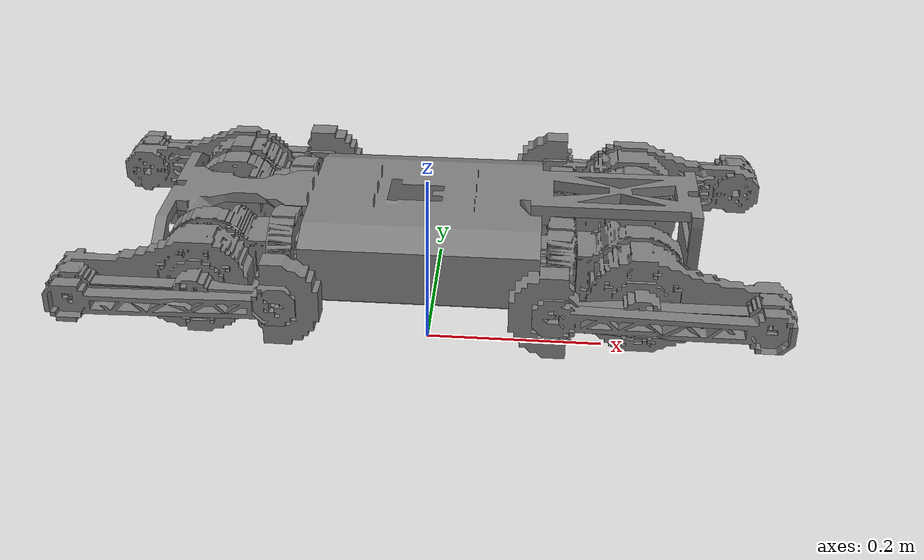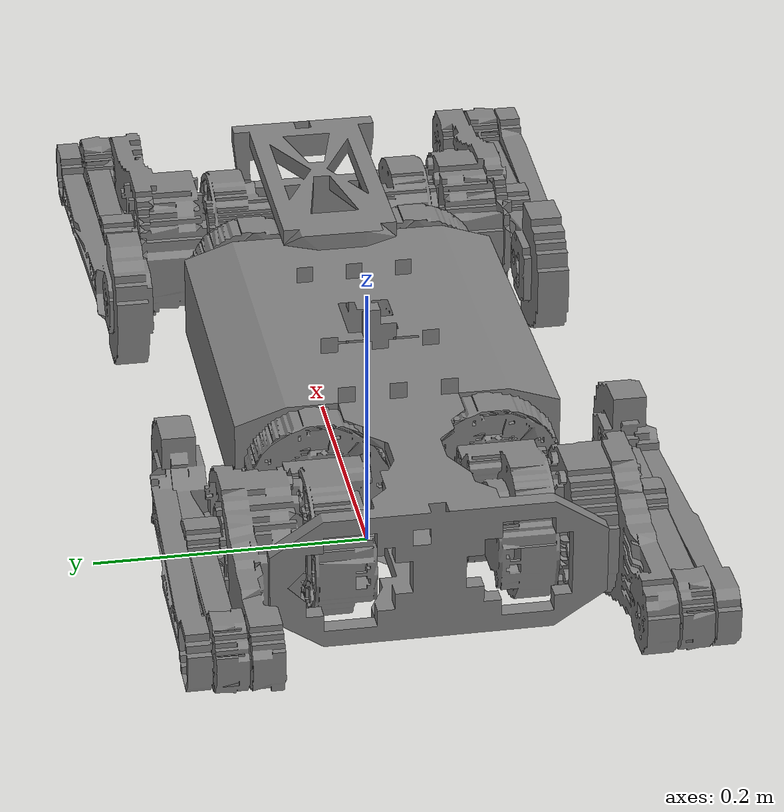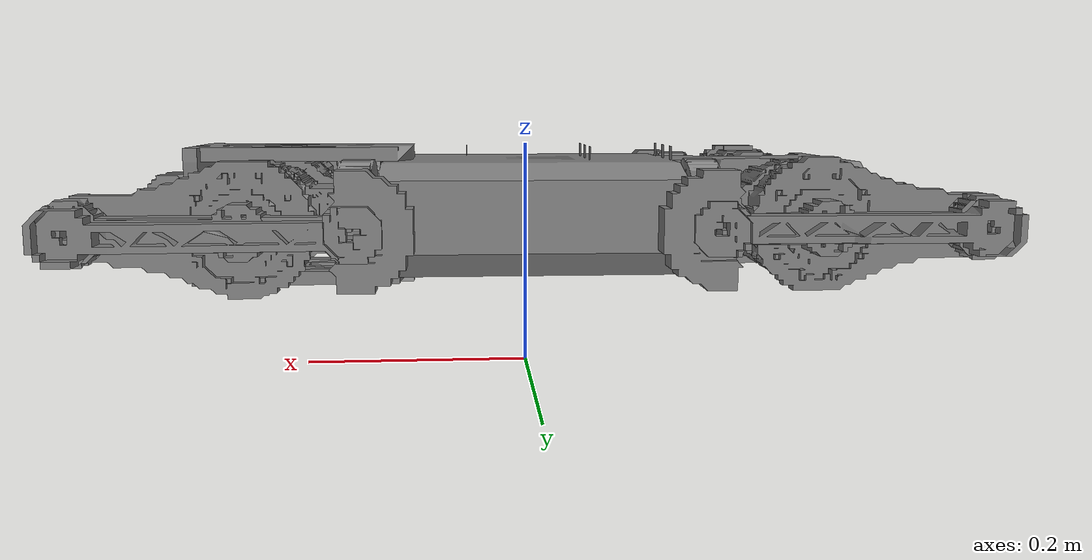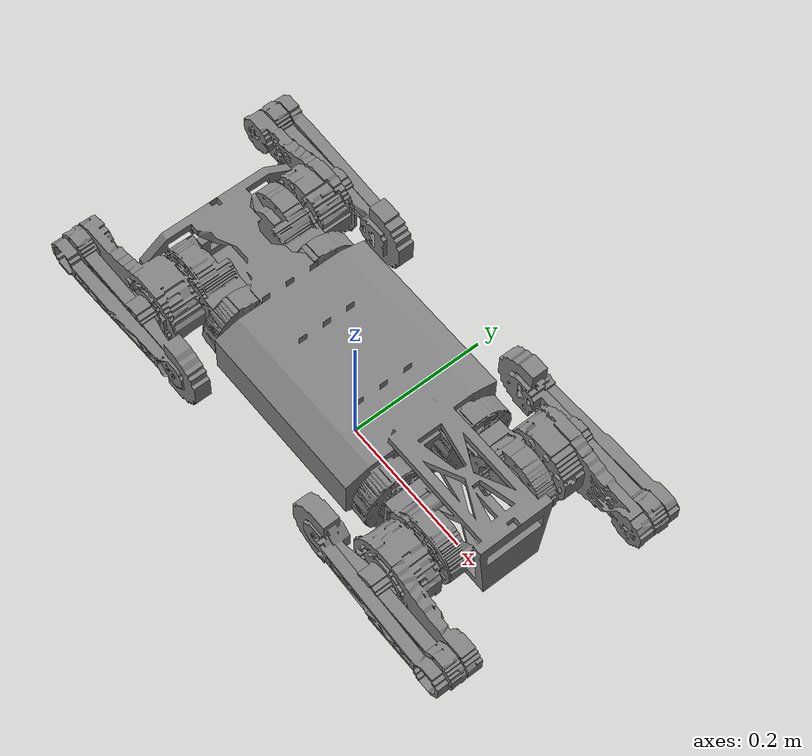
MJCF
<mujoco model="wojtek">
  <compiler angle="radian" meshdir="../meshes/"/>

  <option timestep="0.004" iterations="2" ls_iterations="5"/>

  <size nkey="1"/>

  <default>
    <joint limited="true" armature="0.01" damping="0.3" frictionloss="0.3"/>
    <geom conaffinity="15" condim="4" friction="0.9 0.2 0.2" solref="0.001 2"/>

    <equality solref="0.001 2"/>
    <general ctrllimited="true"/>
    <default class="visual">
      <geom type="mesh" contype="0" conaffinity="0" group="2" density="0" material="grey"/>
    </default>
    <default class="collision">
      <geom type="mesh" group="3"/>
    </default>
  </default>

  <asset>
    <material name="grey" rgba="0.5 0.5 0.5 1"/>
    <mesh name="base_link" file="base_link.stl"/>
    <mesh name="first_link" file="first_link.stl"/>
    <mesh name="second_link" file="second_link.stl"/>
    <mesh name="third_link" file="third_link.stl"/>
    <mesh name="fourth_link" file="fourth_link.stl"/>
    <mesh name="fifth_link" file="fifth_link.stl"/>
    <mesh name="sixth_link" file="sixth_link.stl"/>
  </asset>

  <worldbody>
    <body name="root" pos="0 0 0.08">
      <inertial pos="0 0 0" mass="8.63998" diaginertia="0.0256319 0.0904317 0.101664"/>
      <joint name="root" type="free" armature="0" damping="0" frictionloss="0"/>
      <geom name="base_link_visual" class="visual" pos="0 0 0" quat="0 0 0 1" mesh="base_link"/>
      <geom name="base_link_collision" class="collision" pos="0 0 0" quat="0 0 0 1" contype="0" conaffinity="0" mesh="base_link"/>
      <geom name="rear_left_first_link_visual" class="visual" pos="-0.131 0.06 0.06" quat="0 0 -0.707107 0.707107" mesh="first_link"/>
      <geom name="rear_left_first_link_collision" class="collision" pos="-0.131 0.06 0.06" quat="0 0 -0.707107 0.707107" contype="0" conaffinity="0" mesh="first_link"/>
      <geom name="rear_right_first_link_visual" class="visual" pos="-0.131 -0.06 0.06" quat="0 0 -0.707107 0.707107" mesh="first_link"/>
      <geom name="rear_right_first_link_collision" class="collision" pos="-0.131 -0.06 0.06" quat="0 0 -0.707107 0.707107" contype="0" conaffinity="0" mesh="first_link"/>
      <geom name="front_right_first_link_visual" class="visual" pos="0.131 -0.06 0.06" quat="0.707107 -0.707107 0 0" mesh="first_link"/>
      <geom name="front_right_first_link_collision" class="collision" pos="0.131 -0.06 0.06" quat="0.707107 -0.707107 0 0" contype="0" conaffinity="0" mesh="first_link"/>
      <geom name="front_left_first_link_visual" class="visual" pos="0.131 0.06 0.06" quat="0.707107 -0.707107 0 0" mesh="first_link"/>
      <geom name="front_left_first_link_collision" class="collision" pos="0.131 0.06 0.06" quat="0.707107 -0.707107 0 0" contype="0" conaffinity="0" mesh="first_link"/>
      <geom name="base_box_r0c0" size="0.0278333 0.0261667 0.05" pos="-0.141667 -0.0533333 0" type="box" group="3"/>
      <geom name="base_box_r0c2" size="0.0278333 0.0261667 0.05" pos="-0.0283333 -0.0533333 0" type="box" group="3"/>
      <geom name="base_box_r0c4" size="0.0278333 0.0261667 0.05" pos="0.085 -0.0533333 0" type="box" group="3"/>
      <geom name="base_box_r1c1" size="0.0278333 0.0261667 0.05" pos="-0.085 0 0" type="box" group="3"/>
      <geom name="base_box_r1c3" size="0.0278333 0.0261667 0.05" pos="0.0283333 0 0" type="box" group="3"/>
      <geom name="base_box_r1c5" size="0.0278333 0.0261667 0.05" pos="0.141667 0 0" type="box" group="3"/>
      <geom name="base_box_r2c0" size="0.0278333 0.0261667 0.05" pos="-0.141667 0.0533333 0" type="box" group="3"/>
      <geom name="base_box_r2c2" size="0.0278333 0.0261667 0.05" pos="-0.0283333 0.0533333 0" type="box" group="3"/>
      <geom name="base_box_r2c4" size="0.0278333 0.0261667 0.05" pos="0.085 0.0533333 0" type="box" group="3"/>
      <site name="imu" pos="0 0 0" size="1e-08"/>
      <camera name="ego" pos="0.3 0 0.1" quat="0.541665 0.454532 -0.454532 -0.541665" fovy="100"/>
      <camera name="bench" pos="0.05 0 1.11" quat="-0.5 -0.5 0.5 0.5" fovy="73.74"/>
      <body name="rear_left_second_link" pos="-0.162 0.06 0.06" quat="0 0 0.707107 0.707107">
        <inertial pos="0.055 0 0" quat="0.5 0.5 -0.5 0.5" mass="0.6" diaginertia="0.00075 0.000455 0.000455"/>
        <joint name="rear_left_first_joint" pos="0 0 0" axis="1 0 0" range="-3.1416 3.1416" damping="0.05" frictionloss="0.01"/>
        <geom name="rear_left_second_link_visual" class="visual" mesh="second_link"/>
        <geom name="rear_left_second_link_collision" class="collision" contype="0" conaffinity="0" mesh="second_link"/>
        <geom name="rear_left_second_link_floor" size="0.035" pos="0.055 0 0" contype="2" conaffinity="0" group="3"/>
        <body name="rear_left_third_link" pos="0.064 0 0.023" quat="0 0 0 1">
          <inertial pos="0 0 0.025" quat="0.5 0.5 -0.5 0.5" mass="0.6" diaginertia="0.00075 0.000455 0.000455"/>
          <joint name="rear_left_second_joint" pos="0 0 0" axis="0 0 -1" range="-3.14 3.14" damping="0.05" frictionloss="0.01"/>
          <geom name="rear_left_third_link_visual" class="visual" mesh="third_link"/>
          <geom name="rear_left_third_link_collision" class="collision" contype="0" conaffinity="0" mesh="third_link"/>
          <geom name="rear_left_third_link_floor" size="0.028 0.08" pos="-0.04 0 0.03" quat="0.707107 0 -0.707107 0" type="capsule" contype="2" conaffinity="0" group="3"/>
          <body name="rear_left_fourth_link" pos="0 0 0.0555" quat="6.28319e-06 0 0 -1">
            <inertial pos="0.0625 0 0.015" quat="0 0.707107 0 0.707107" mass="0.04" diaginertia="0.000104167 0.000103104 3.10417e-06"/>
            <joint name="rear_left_third_joint" pos="0 0 0" axis="0 0 1" range="0.425 5.8" damping="0.05" frictionloss="0.01"/>
            <geom name="rear_left_fourth_link_visual" class="visual" mesh="fourth_link"/>
            <geom name="rear_left_fourth_link_collision" class="collision" contype="0" conaffinity="0" mesh="fourth_link"/>
            <body name="rear_left_fifth_link" pos="0.125 0 0.0255" quat="0 0 0 1">
              <inertial pos="0.105 0 -4.59982e-07" quat="0 0.707107 0 0.707107" mass="0.050002" diaginertia="0.000267084 0.000261694 7.94407e-06"/>
              <joint name="rear_left_fourth_joint" pos="0 0 0" axis="0 0 -1" limited="false" damping="0" frictionloss="0"/>
              <geom name="rear_left_fifth_link_visual" class="visual" mesh="fifth_link"/>
              <geom name="rear_left_fifth_link_collision" class="collision" contype="0" conaffinity="0" mesh="fifth_link"/>
              <geom name="rear_left_fifth_link_floor" size="0.012 0.06" pos="0.08 0 0" quat="0.707107 0 -0.707107 0" type="capsule" contype="2" conaffinity="0" group="3"/>
              <site name="rear_left_chain_close_a" pos="0.105 0 -0.0115" group="4"/>
              <body name="rear_left_chain_close_a_link" pos="0.21 0 -0.0115" quat="0 0 0 1"/>
            </body>
          </body>
          <body name="rear_left_sixth_link" pos="-0.125 0 0.058">
            <inertial pos="0.105 0 0" quat="0 0.707107 0 0.707107" mass="0.05" diaginertia="0.000267083 0.000261693 7.94271e-06"/>
            <joint name="rear_left_fifth_joint" pos="0 0 0" axis="0 0 -1" range="-3.14 3.14" damping="0" frictionloss="0"/>
            <geom name="rear_left_sixth_link_visual" class="visual" mesh="sixth_link"/>
            <geom name="rear_left_sixth_link_collision" class="collision" contype="0" conaffinity="0" mesh="sixth_link"/>
            <geom name="rear_left_sixth_link_floor" size="0.012 0.06" pos="0.08 0 0" quat="0.707107 0 -0.707107 0" type="capsule" contype="2" conaffinity="0" group="3"/>
            <body name="rear_left_foot_link" pos="0.21 0 0.0115">
              <inertial pos="0.0525 0 0" quat="0.5 0.5 0.5 0.5" mass="0.01" diaginertia="1e-06 1e-06 1e-06"/>
              <joint name="rear_left_foot_joint" pos="0 0 0" axis="0 0 1" range="-3.14 3.14" damping="0" frictionloss="0"/>
              <geom name="rear_left_foot_sphere" size="0.046" conaffinity="1" group="3"/>
              <site name="rear_left_foot" pos="0 0 0" group="4"/>
              <site name="rear_left_chain_close_b" pos="0.105 0 0" group="4"/>
            </body>
          </body>
        </body>
      </body>
      <body name="rear_right_second_link" pos="-0.162 -0.06 0.06" quat="0 0 -0.707107 0.707107">
        <inertial pos="0.055 0 0" quat="0.5 0.5 -0.5 0.5" mass="0.6" diaginertia="0.00075 0.000455 0.000455"/>
        <joint name="rear_right_first_joint" pos="0 0 0" axis="1 0 0" range="-3.1416 3.1416" damping="0.05" frictionloss="0.01"/>
        <geom name="rear_right_second_link_visual" class="visual" mesh="second_link"/>
        <geom name="rear_right_second_link_collision" class="collision" contype="0" conaffinity="0" mesh="second_link"/>
        <geom name="rear_right_second_link_floor" size="0.035" pos="0.055 0 0" contype="2" conaffinity="0" group="3"/>
        <body name="rear_right_third_link" pos="0.064 0 0.023" quat="0 0 0 1">
          <inertial pos="0 0 0.025" quat="0.5 0.5 -0.5 0.5" mass="0.6" diaginertia="0.00075 0.000455 0.000455"/>
          <joint name="rear_right_second_joint" pos="0 0 0" axis="0 0 1" range="-3.14 3.14" damping="0.05" frictionloss="0.01"/>
          <geom name="rear_right_third_link_visual" class="visual" mesh="third_link"/>
          <geom name="rear_right_third_link_collision" class="collision" contype="0" conaffinity="0" mesh="third_link"/>
          <geom name="rear_right_third_link_floor" size="0.028 0.08" pos="-0.04 0 0.03" quat="0.707107 0 -0.707107 0" type="capsule" contype="2" conaffinity="0" group="3"/>
          <body name="rear_right_fourth_link" pos="0 0 0.0555" quat="6.28319e-06 0 0 1">
            <inertial pos="0.0625 0 0.015" quat="0 0.707107 0 0.707107" mass="0.04" diaginertia="0.000104167 0.000103104 3.10417e-06"/>
            <joint name="rear_right_third_joint" pos="0 0 0" axis="0 0 -1" range="0.425 5.8" damping="0.05" frictionloss="0.01"/>
            <geom name="rear_right_fourth_link_visual" class="visual" mesh="fourth_link"/>
            <geom name="rear_right_fourth_link_collision" class="collision" contype="0" conaffinity="0" mesh="fourth_link"/>
            <body name="rear_right_fifth_link" pos="0.125 0 0.0255" quat="0 0 0 1">
              <inertial pos="0.105 0 -4.59982e-07" quat="0 0.707107 0 0.707107" mass="0.050002" diaginertia="0.000267084 0.000261694 7.94407e-06"/>
              <joint name="rear_right_fourth_joint" pos="0 0 0" axis="0 0 -1" limited="false" damping="0" frictionloss="0"/>
              <geom name="rear_right_fifth_link_visual" class="visual" mesh="fifth_link"/>
              <geom name="rear_right_fifth_link_collision" class="collision" contype="0" conaffinity="0" mesh="fifth_link"/>
              <geom name="rear_right_fifth_link_floor" size="0.012 0.06" pos="0.08 0 0" quat="0.707107 0 -0.707107 0" type="capsule" contype="2" conaffinity="0" group="3"/>
              <site name="rear_right_chain_close_a" pos="0.105 0 -0.0115" group="4"/>
              <body name="rear_right_chain_close_a_link" pos="0.21 0 -0.0115" quat="0 0 0 1"/>
            </body>
          </body>
          <body name="rear_right_sixth_link" pos="-0.125 0 0.058">
            <inertial pos="0.105 0 0" quat="0 0.707107 0 0.707107" mass="0.05" diaginertia="0.000267083 0.000261693 7.94271e-06"/>
            <joint name="rear_right_fifth_joint" pos="0 0 0" axis="0 0 -1" range="-3.14 3.14" damping="0" frictionloss="0"/>
            <geom name="rear_right_sixth_link_visual" class="visual" mesh="sixth_link"/>
            <geom name="rear_right_sixth_link_collision" class="collision" contype="0" conaffinity="0" mesh="sixth_link"/>
            <geom name="rear_right_sixth_link_floor" size="0.012 0.06" pos="0.08 0 0" quat="0.707107 0 -0.707107 0" type="capsule" contype="2" conaffinity="0" group="3"/>
            <body name="rear_right_foot_link" pos="0.21 0 0.0115">
              <inertial pos="0.0525 0 0" quat="0.5 0.5 0.5 0.5" mass="0.01" diaginertia="1e-06 1e-06 1e-06"/>
              <joint name="rear_right_foot_joint" pos="0 0 0" axis="0 0 1" range="-3.14 3.14" damping="0" frictionloss="0"/>
              <geom name="rear_right_foot_sphere" size="0.046" conaffinity="1" group="3"/>
              <site name="rear_right_foot" pos="0 0 0" group="4"/>
              <site name="rear_right_chain_close_b" pos="0.105 0 0" group="4"/>
            </body>
          </body>
        </body>
      </body>
      <body name="front_right_second_link" pos="0.162 -0.06 0.06" quat="0.707107 0.707107 0 0">
        <inertial pos="0.055 0 0" quat="0.5 0.5 -0.5 0.5" mass="0.6" diaginertia="0.00075 0.000455 0.000455"/>
        <joint name="front_right_first_joint" pos="0 0 0" axis="1 0 0" range="-3.1416 3.1416" damping="0.05" frictionloss="0.01"/>
        <geom name="front_right_second_link_visual" class="visual" mesh="second_link"/>
        <geom name="front_right_second_link_collision" class="collision" contype="0" conaffinity="0" mesh="second_link"/>
        <geom name="front_right_second_link_floor" size="0.035" pos="0.055 0 0" contype="2" conaffinity="0" group="3"/>
        <body name="front_right_third_link" pos="0.064 0 0.023" quat="0 0 0 1">
          <inertial pos="0 0 0.025" quat="0.5 0.5 -0.5 0.5" mass="0.6" diaginertia="0.00075 0.000455 0.000455"/>
          <joint name="front_right_second_joint" pos="0 0 0" axis="0 0 -1" range="-3.14 3.14" damping="0.05" frictionloss="0.01"/>
          <geom name="front_right_third_link_visual" class="visual" mesh="third_link"/>
          <geom name="front_right_third_link_collision" class="collision" contype="0" conaffinity="0" mesh="third_link"/>
          <geom name="front_right_third_link_floor" size="0.028 0.08" pos="-0.04 0 0.03" quat="0.707107 0 -0.707107 0" type="capsule" contype="2" conaffinity="0" group="3"/>
          <body name="front_right_fourth_link" pos="0 0 0.0555" quat="6.28319e-06 0 0 -1">
            <inertial pos="0.0625 0 0.015" quat="0 0.707107 0 0.707107" mass="0.04" diaginertia="0.000104167 0.000103104 3.10417e-06"/>
            <joint name="front_right_third_joint" pos="0 0 0" axis="0 0 1" range="0.425 5.8" damping="0.05" frictionloss="0.01"/>
            <geom name="front_right_fourth_link_visual" class="visual" mesh="fourth_link"/>
            <geom name="front_right_fourth_link_collision" class="collision" contype="0" conaffinity="0" mesh="fourth_link"/>
            <body name="front_right_fifth_link" pos="0.125 0 0.0255" quat="0 0 0 1">
              <inertial pos="0.105 0 -4.59982e-07" quat="0 0.707107 0 0.707107" mass="0.050002" diaginertia="0.000267084 0.000261694 7.94407e-06"/>
              <joint name="front_right_fourth_joint" pos="0 0 0" axis="0 0 -1" limited="false" damping="0" frictionloss="0"/>
              <geom name="front_right_fifth_link_visual" class="visual" mesh="fifth_link"/>
              <geom name="front_right_fifth_link_collision" class="collision" contype="0" conaffinity="0" mesh="fifth_link"/>
              <geom name="front_right_fifth_link_floor" size="0.012 0.06" pos="0.08 0 0" quat="0.707107 0 -0.707107 0" type="capsule" contype="2" conaffinity="0" group="3"/>
              <site name="front_right_chain_close_a" pos="0.105 0 -0.0115" group="4"/>
              <body name="front_right_chain_close_a_link" pos="0.21 0 -0.0115" quat="0 0 0 1"/>
            </body>
          </body>
          <body name="front_right_sixth_link" pos="-0.125 0 0.058">
            <inertial pos="0.105 0 0" quat="0 0.707107 0 0.707107" mass="0.05" diaginertia="0.000267083 0.000261693 7.94271e-06"/>
            <joint name="front_right_fifth_joint" pos="0 0 0" axis="0 0 -1" range="-3.14 3.14" damping="0" frictionloss="0"/>
            <geom name="front_right_sixth_link_visual" class="visual" mesh="sixth_link"/>
            <geom name="front_right_sixth_link_collision" class="collision" contype="0" conaffinity="0" mesh="sixth_link"/>
            <geom name="front_right_sixth_link_floor" size="0.012 0.06" pos="0.08 0 0" quat="0.707107 0 -0.707107 0" type="capsule" contype="2" conaffinity="0" group="3"/>
            <body name="front_right_foot_link" pos="0.21 0 0.0115">
              <inertial pos="0.0525 0 0" quat="0.5 0.5 0.5 0.5" mass="0.01" diaginertia="1e-06 1e-06 1e-06"/>
              <joint name="front_right_foot_joint" pos="0 0 0" axis="0 0 1" range="-3.14 3.14" damping="0" frictionloss="0"/>
              <geom name="front_right_foot_sphere" size="0.046" conaffinity="1" group="3"/>
              <site name="front_right_foot" pos="0 0 0" group="4"/>
              <site name="front_right_chain_close_b" pos="0.105 0 0" group="4"/>
            </body>
          </body>
        </body>
      </body>
      <body name="front_left_second_link" pos="0.162 0.06 0.06" quat="0.707107 -0.707107 0 0">
        <inertial pos="0.055 0 0" quat="0.5 0.5 -0.5 0.5" mass="0.6" diaginertia="0.00075 0.000455 0.000455"/>
        <joint name="front_left_first_joint" pos="0 0 0" axis="1 0 0" range="-3.1416 3.1416" damping="0.05" frictionloss="0.01"/>
        <geom name="front_left_second_link_visual" class="visual" mesh="second_link"/>
        <geom name="front_left_second_link_collision" class="collision" contype="0" conaffinity="0" mesh="second_link"/>
        <geom name="front_left_second_link_floor" size="0.035" pos="0.055 0 0" contype="2" conaffinity="0" group="3"/>
        <body name="front_left_third_link" pos="0.064 0 0.023" quat="0 0 0 1">
          <inertial pos="0 0 0.025" quat="0.5 0.5 -0.5 0.5" mass="0.6" diaginertia="0.00075 0.000455 0.000455"/>
          <joint name="front_left_second_joint" pos="0 0 0" axis="0 0 1" range="-3.14 3.14" damping="0.05" frictionloss="0.01"/>
          <geom name="front_left_third_link_visual" class="visual" mesh="third_link"/>
          <geom name="front_left_third_link_collision" class="collision" contype="0" conaffinity="0" mesh="third_link"/>
          <geom name="front_left_third_link_floor" size="0.028 0.08" pos="-0.04 0 0.03" quat="0.707107 0 -0.707107 0" type="capsule" contype="2" conaffinity="0" group="3"/>
          <body name="front_left_fourth_link" pos="0 0 0.0555" quat="6.28319e-06 0 0 1">
            <inertial pos="0.0625 0 0.015" quat="0 0.707107 0 0.707107" mass="0.04" diaginertia="0.000104167 0.000103104 3.10417e-06"/>
            <joint name="front_left_third_joint" pos="0 0 0" axis="0 0 -1" range="0.425 5.8" damping="0.05" frictionloss="0.01"/>
            <geom name="front_left_fourth_link_visual" class="visual" mesh="fourth_link"/>
            <geom name="front_left_fourth_link_collision" class="collision" contype="0" conaffinity="0" mesh="fourth_link"/>
            <body name="front_left_fifth_link" pos="0.125 0 0.0255" quat="0 0 0 1">
              <inertial pos="0.105 0 -4.59982e-07" quat="0 0.707107 0 0.707107" mass="0.050002" diaginertia="0.000267084 0.000261694 7.94407e-06"/>
              <joint name="front_left_fourth_joint" pos="0 0 0" axis="0 0 -1" limited="false" damping="0" frictionloss="0"/>
              <geom name="front_left_fifth_link_visual" class="visual" mesh="fifth_link"/>
              <geom name="front_left_fifth_link_collision" class="collision" contype="0" conaffinity="0" mesh="fifth_link"/>
              <geom name="front_left_fifth_link_floor" size="0.012 0.06" pos="0.08 0 0" quat="0.707107 0 -0.707107 0" type="capsule" contype="2" conaffinity="0" group="3"/>
              <site name="front_left_chain_close_a" pos="0.105 0 -0.0115" group="4"/>
              <body name="front_left_chain_close_a_link" pos="0.21 0 -0.0115" quat="0 0 0 1"/>
            </body>
          </body>
          <body name="front_left_sixth_link" pos="-0.125 0 0.058">
            <inertial pos="0.105 0 0" quat="0 0.707107 0 0.707107" mass="0.05" diaginertia="0.000267083 0.000261693 7.94271e-06"/>
            <joint name="front_left_fifth_joint" pos="0 0 0" axis="0 0 -1" range="-3.14 3.14" damping="0" frictionloss="0"/>
            <geom name="front_left_sixth_link_visual" class="visual" mesh="sixth_link"/>
            <geom name="front_left_sixth_link_collision" class="collision" contype="0" conaffinity="0" mesh="sixth_link"/>
            <geom name="front_left_sixth_link_floor" size="0.012 0.06" pos="0.08 0 0" quat="0.707107 0 -0.707107 0" type="capsule" contype="2" conaffinity="0" group="3"/>
            <body name="front_left_foot_link" pos="0.21 0 0.0115">
              <inertial pos="0.0525 0 0" quat="0.5 0.5 0.5 0.5" mass="0.01" diaginertia="1e-06 1e-06 1e-06"/>
              <joint name="front_left_foot_joint" pos="0 0 0" axis="0 0 1" range="-3.14 3.14" damping="0" frictionloss="0"/>
              <geom name="front_left_foot_sphere" size="0.046" conaffinity="1" group="3"/>
              <site name="front_left_foot" pos="0 0 0" group="4"/>
              <site name="front_left_chain_close_b" pos="0.105 0 0" group="4"/>
            </body>
          </body>
        </body>
      </body>
    </body>
  </worldbody>

  <contact>
    <exclude name="exclude_rear_left_second_link_root" body1="root" body2="rear_left_second_link"/>
    <exclude name="exclude_rear_left_third_link_root" body1="root" body2="rear_left_third_link"/>
    <exclude name="exclude_rear_left_fourth_link_root" body1="root" body2="rear_left_fourth_link"/>
    <exclude name="exclude_rear_left_fifth_link_root" body1="root" body2="rear_left_fifth_link"/>
    <exclude name="exclude_rear_left_sixth_link_root" body1="root" body2="rear_left_sixth_link"/>
    <exclude name="exclude_rear_right_second_link_root" body1="root" body2="rear_right_second_link"/>
    <exclude name="exclude_rear_right_third_link_root" body1="root" body2="rear_right_third_link"/>
    <exclude name="exclude_rear_right_fourth_link_root" body1="root" body2="rear_right_fourth_link"/>
    <exclude name="exclude_rear_right_fifth_link_root" body1="root" body2="rear_right_fifth_link"/>
    <exclude name="exclude_rear_right_sixth_link_root" body1="root" body2="rear_right_sixth_link"/>
    <exclude name="exclude_front_right_second_link_root" body1="root" body2="front_right_second_link"/>
    <exclude name="exclude_front_right_third_link_root" body1="root" body2="front_right_third_link"/>
    <exclude name="exclude_front_right_fourth_link_root" body1="root" body2="front_right_fourth_link"/>
    <exclude name="exclude_front_right_fifth_link_root" body1="root" body2="front_right_fifth_link"/>
    <exclude name="exclude_front_right_sixth_link_root" body1="root" body2="front_right_sixth_link"/>
    <exclude name="exclude_front_left_second_link_root" body1="root" body2="front_left_second_link"/>
    <exclude name="exclude_front_left_third_link_root" body1="root" body2="front_left_third_link"/>
    <exclude name="exclude_front_left_fourth_link_root" body1="root" body2="front_left_fourth_link"/>
    <exclude name="exclude_front_left_fifth_link_root" body1="root" body2="front_left_fifth_link"/>
    <exclude name="exclude_front_left_sixth_link_root" body1="root" body2="front_left_sixth_link"/>
    <exclude name="exclude_rear_left_second_link_rear_left_third_link" body1="rear_left_second_link" body2="rear_left_third_link"/>
    <exclude name="exclude_rear_left_third_link_rear_left_second_link" body1="rear_left_second_link" body2="rear_left_third_link"/>
    <exclude name="exclude_rear_left_second_link_rear_left_fourth_link" body1="rear_left_second_link" body2="rear_left_fourth_link"/>
    <exclude name="exclude_rear_left_fourth_link_rear_left_second_link" body1="rear_left_second_link" body2="rear_left_fourth_link"/>
    <exclude name="exclude_rear_left_second_link_rear_left_fifth_link" body1="rear_left_second_link" body2="rear_left_fifth_link"/>
    <exclude name="exclude_rear_left_fifth_link_rear_left_second_link" body1="rear_left_second_link" body2="rear_left_fifth_link"/>
    <exclude name="exclude_rear_left_second_link_rear_left_sixth_link" body1="rear_left_second_link" body2="rear_left_sixth_link"/>
    <exclude name="exclude_rear_left_sixth_link_rear_left_second_link" body1="rear_left_second_link" body2="rear_left_sixth_link"/>
    <exclude name="exclude_rear_left_third_link_rear_left_fourth_link" body1="rear_left_third_link" body2="rear_left_fourth_link"/>
    <exclude name="exclude_rear_left_fourth_link_rear_left_third_link" body1="rear_left_third_link" body2="rear_left_fourth_link"/>
    <exclude name="exclude_rear_left_third_link_rear_left_fifth_link" body1="rear_left_third_link" body2="rear_left_fifth_link"/>
    <exclude name="exclude_rear_left_fifth_link_rear_left_third_link" body1="rear_left_third_link" body2="rear_left_fifth_link"/>
    <exclude name="exclude_rear_left_third_link_rear_left_sixth_link" body1="rear_left_third_link" body2="rear_left_sixth_link"/>
    <exclude name="exclude_rear_left_sixth_link_rear_left_third_link" body1="rear_left_third_link" body2="rear_left_sixth_link"/>
    <exclude name="exclude_rear_left_fourth_link_rear_left_fifth_link" body1="rear_left_fourth_link" body2="rear_left_fifth_link"/>
    <exclude name="exclude_rear_left_fifth_link_rear_left_fourth_link" body1="rear_left_fourth_link" body2="rear_left_fifth_link"/>
    <exclude name="exclude_rear_left_fourth_link_rear_left_sixth_link" body1="rear_left_fourth_link" body2="rear_left_sixth_link"/>
    <exclude name="exclude_rear_left_sixth_link_rear_left_fourth_link" body1="rear_left_fourth_link" body2="rear_left_sixth_link"/>
    <exclude name="exclude_rear_left_fifth_link_rear_left_sixth_link" body1="rear_left_fifth_link" body2="rear_left_sixth_link"/>
    <exclude name="exclude_rear_left_sixth_link_rear_left_fifth_link" body1="rear_left_fifth_link" body2="rear_left_sixth_link"/>
    <exclude name="exclude_rear_right_second_link_rear_right_third_link" body1="rear_right_second_link" body2="rear_right_third_link"/>
    <exclude name="exclude_rear_right_third_link_rear_right_second_link" body1="rear_right_second_link" body2="rear_right_third_link"/>
    <exclude name="exclude_rear_right_second_link_rear_right_fourth_link" body1="rear_right_second_link" body2="rear_right_fourth_link"/>
    <exclude name="exclude_rear_right_fourth_link_rear_right_second_link" body1="rear_right_second_link" body2="rear_right_fourth_link"/>
    <exclude name="exclude_rear_right_second_link_rear_right_fifth_link" body1="rear_right_second_link" body2="rear_right_fifth_link"/>
    <exclude name="exclude_rear_right_fifth_link_rear_right_second_link" body1="rear_right_second_link" body2="rear_right_fifth_link"/>
    <exclude name="exclude_rear_right_second_link_rear_right_sixth_link" body1="rear_right_second_link" body2="rear_right_sixth_link"/>
    <exclude name="exclude_rear_right_sixth_link_rear_right_second_link" body1="rear_right_second_link" body2="rear_right_sixth_link"/>
    <exclude name="exclude_rear_right_third_link_rear_right_fourth_link" body1="rear_right_third_link" body2="rear_right_fourth_link"/>
    <exclude name="exclude_rear_right_fourth_link_rear_right_third_link" body1="rear_right_third_link" body2="rear_right_fourth_link"/>
    <exclude name="exclude_rear_right_third_link_rear_right_fifth_link" body1="rear_right_third_link" body2="rear_right_fifth_link"/>
    <exclude name="exclude_rear_right_fifth_link_rear_right_third_link" body1="rear_right_third_link" body2="rear_right_fifth_link"/>
    <exclude name="exclude_rear_right_third_link_rear_right_sixth_link" body1="rear_right_third_link" body2="rear_right_sixth_link"/>
    <exclude name="exclude_rear_right_sixth_link_rear_right_third_link" body1="rear_right_third_link" body2="rear_right_sixth_link"/>
    <exclude name="exclude_rear_right_fourth_link_rear_right_fifth_link" body1="rear_right_fourth_link" body2="rear_right_fifth_link"/>
    <exclude name="exclude_rear_right_fifth_link_rear_right_fourth_link" body1="rear_right_fourth_link" body2="rear_right_fifth_link"/>
    <exclude name="exclude_rear_right_fourth_link_rear_right_sixth_link" body1="rear_right_fourth_link" body2="rear_right_sixth_link"/>
    <exclude name="exclude_rear_right_sixth_link_rear_right_fourth_link" body1="rear_right_fourth_link" body2="rear_right_sixth_link"/>
    <exclude name="exclude_rear_right_fifth_link_rear_right_sixth_link" body1="rear_right_fifth_link" body2="rear_right_sixth_link"/>
    <exclude name="exclude_rear_right_sixth_link_rear_right_fifth_link" body1="rear_right_fifth_link" body2="rear_right_sixth_link"/>
    <exclude name="exclude_front_right_second_link_front_right_third_link" body1="front_right_second_link" body2="front_right_third_link"/>
    <exclude name="exclude_front_right_third_link_front_right_second_link" body1="front_right_second_link" body2="front_right_third_link"/>
    <exclude name="exclude_front_right_second_link_front_right_fourth_link" body1="front_right_second_link" body2="front_right_fourth_link"/>
    <exclude name="exclude_front_right_fourth_link_front_right_second_link" body1="front_right_second_link" body2="front_right_fourth_link"/>
    <exclude name="exclude_front_right_second_link_front_right_fifth_link" body1="front_right_second_link" body2="front_right_fifth_link"/>
    <exclude name="exclude_front_right_fifth_link_front_right_second_link" body1="front_right_second_link" body2="front_right_fifth_link"/>
    <exclude name="exclude_front_right_second_link_front_right_sixth_link" body1="front_right_second_link" body2="front_right_sixth_link"/>
    <exclude name="exclude_front_right_sixth_link_front_right_second_link" body1="front_right_second_link" body2="front_right_sixth_link"/>
    <exclude name="exclude_front_right_third_link_front_right_fourth_link" body1="front_right_third_link" body2="front_right_fourth_link"/>
    <exclude name="exclude_front_right_fourth_link_front_right_third_link" body1="front_right_third_link" body2="front_right_fourth_link"/>
    <exclude name="exclude_front_right_third_link_front_right_fifth_link" body1="front_right_third_link" body2="front_right_fifth_link"/>
    <exclude name="exclude_front_right_fifth_link_front_right_third_link" body1="front_right_third_link" body2="front_right_fifth_link"/>
    <exclude name="exclude_front_right_third_link_front_right_sixth_link" body1="front_right_third_link" body2="front_right_sixth_link"/>
    <exclude name="exclude_front_right_sixth_link_front_right_third_link" body1="front_right_third_link" body2="front_right_sixth_link"/>
    <exclude name="exclude_front_right_fourth_link_front_right_fifth_link" body1="front_right_fourth_link" body2="front_right_fifth_link"/>
    <exclude name="exclude_front_right_fifth_link_front_right_fourth_link" body1="front_right_fourth_link" body2="front_right_fifth_link"/>
    <exclude name="exclude_front_right_fourth_link_front_right_sixth_link" body1="front_right_fourth_link" body2="front_right_sixth_link"/>
    <exclude name="exclude_front_right_sixth_link_front_right_fourth_link" body1="front_right_fourth_link" body2="front_right_sixth_link"/>
    <exclude name="exclude_front_right_fifth_link_front_right_sixth_link" body1="front_right_fifth_link" body2="front_right_sixth_link"/>
    <exclude name="exclude_front_right_sixth_link_front_right_fifth_link" body1="front_right_fifth_link" body2="front_right_sixth_link"/>
    <exclude name="exclude_front_left_second_link_front_left_third_link" body1="front_left_second_link" body2="front_left_third_link"/>
    <exclude name="exclude_front_left_third_link_front_left_second_link" body1="front_left_second_link" body2="front_left_third_link"/>
    <exclude name="exclude_front_left_second_link_front_left_fourth_link" body1="front_left_second_link" body2="front_left_fourth_link"/>
    <exclude name="exclude_front_left_fourth_link_front_left_second_link" body1="front_left_second_link" body2="front_left_fourth_link"/>
    <exclude name="exclude_front_left_second_link_front_left_fifth_link" body1="front_left_second_link" body2="front_left_fifth_link"/>
    <exclude name="exclude_front_left_fifth_link_front_left_second_link" body1="front_left_second_link" body2="front_left_fifth_link"/>
    <exclude name="exclude_front_left_second_link_front_left_sixth_link" body1="front_left_second_link" body2="front_left_sixth_link"/>
    <exclude name="exclude_front_left_sixth_link_front_left_second_link" body1="front_left_second_link" body2="front_left_sixth_link"/>
    <exclude name="exclude_front_left_third_link_front_left_fourth_link" body1="front_left_third_link" body2="front_left_fourth_link"/>
    <exclude name="exclude_front_left_fourth_link_front_left_third_link" body1="front_left_third_link" body2="front_left_fourth_link"/>
    <exclude name="exclude_front_left_third_link_front_left_fifth_link" body1="front_left_third_link" body2="front_left_fifth_link"/>
    <exclude name="exclude_front_left_fifth_link_front_left_third_link" body1="front_left_third_link" body2="front_left_fifth_link"/>
    <exclude name="exclude_front_left_third_link_front_left_sixth_link" body1="front_left_third_link" body2="front_left_sixth_link"/>
    <exclude name="exclude_front_left_sixth_link_front_left_third_link" body1="front_left_third_link" body2="front_left_sixth_link"/>
    <exclude name="exclude_front_left_fourth_link_front_left_fifth_link" body1="front_left_fourth_link" body2="front_left_fifth_link"/>
    <exclude name="exclude_front_left_fifth_link_front_left_fourth_link" body1="front_left_fourth_link" body2="front_left_fifth_link"/>
    <exclude name="exclude_front_left_fourth_link_front_left_sixth_link" body1="front_left_fourth_link" body2="front_left_sixth_link"/>
    <exclude name="exclude_front_left_sixth_link_front_left_fourth_link" body1="front_left_fourth_link" body2="front_left_sixth_link"/>
    <exclude name="exclude_front_left_fifth_link_front_left_sixth_link" body1="front_left_fifth_link" body2="front_left_sixth_link"/>
    <exclude name="exclude_front_left_sixth_link_front_left_fifth_link" body1="front_left_fifth_link" body2="front_left_sixth_link"/>
  </contact>

  <equality>
    <connect name="equality_sconstraint_front_left" body1="front_left_foot_link" body2="front_left_chain_close_a_link" anchor="0 0 0"/>
    <connect name="equality_sconstraint_front_right" body1="front_right_foot_link" body2="front_right_chain_close_a_link" anchor="0 0 0"/>
    <connect name="equality_sconstraint_rear_left" body1="rear_left_foot_link" body2="rear_left_chain_close_a_link" anchor="0 0 0"/>
    <connect name="equality_sconstraint_rear_right" body1="rear_right_foot_link" body2="rear_right_chain_close_a_link" anchor="0 0 0"/>
  </equality>

  <actuator>
    <general name="rear_left_first_joint" joint="rear_left_first_joint" ctrlrange="-3.1416 3.1416" forcerange="-9 9" biastype="affine" gainprm="20" biasprm="0 -20 -1"/>
    <general name="rear_left_second_joint" joint="rear_left_second_joint" ctrlrange="-3.14 3.14" forcerange="-9 9" biastype="affine" gainprm="20" biasprm="0 -20 -1"/>
    <general name="rear_left_third_joint" joint="rear_left_third_joint" ctrlrange="0.425 5.8" forcerange="-9 9" biastype="affine" gainprm="20" biasprm="0 -20 -1"/>
    <general name="rear_right_first_joint" joint="rear_right_first_joint" ctrlrange="-3.1416 3.1416" forcerange="-9 9" biastype="affine" gainprm="20" biasprm="0 -20 -1"/>
    <general name="rear_right_second_joint" joint="rear_right_second_joint" ctrlrange="-3.14 3.14" forcerange="-9 9" biastype="affine" gainprm="20" biasprm="0 -20 -1"/>
    <general name="rear_right_third_joint" joint="rear_right_third_joint" ctrlrange="0.425 5.8" forcerange="-9 9" biastype="affine" gainprm="20" biasprm="0 -20 -1"/>
    <general name="front_right_first_joint" joint="front_right_first_joint" ctrlrange="-3.1416 3.1416" forcerange="-9 9" biastype="affine" gainprm="20" biasprm="0 -20 -1"/>
    <general name="front_right_second_joint" joint="front_right_second_joint" ctrlrange="-3.14 3.14" forcerange="-9 9" biastype="affine" gainprm="20" biasprm="0 -20 -1"/>
    <general name="front_right_third_joint" joint="front_right_third_joint" ctrlrange="0.425 5.8" forcerange="-9 9" biastype="affine" gainprm="20" biasprm="0 -20 -1"/>
    <general name="front_left_first_joint" joint="front_left_first_joint" ctrlrange="-3.1416 3.1416" forcerange="-9 9" biastype="affine" gainprm="20" biasprm="0 -20 -1"/>
    <general name="front_left_second_joint" joint="front_left_second_joint" ctrlrange="-3.14 3.14" forcerange="-9 9" biastype="affine" gainprm="20" biasprm="0 -20 -1"/>
    <general name="front_left_third_joint" joint="front_left_third_joint" ctrlrange="0.425 5.8" forcerange="-9 9" biastype="affine" gainprm="20" biasprm="0 -20 -1"/>
  </actuator>

  <sensor>

    <actuatorpos actuator="rear_left_first_joint" name="rear_left_first_joint_p"/>

    <actuatorvel actuator="rear_left_first_joint" name="rear_left_first_joint_v"/>

    <actuatorfrc actuator="rear_left_first_joint" name="rear_left_first_joint_f" noise="0.001"/>

    <actuatorpos actuator="rear_left_second_joint" name="rear_left_second_joint_p"/>

    <actuatorvel actuator="rear_left_second_joint" name="rear_left_second_joint_v"/>

    <actuatorfrc actuator="rear_left_second_joint" name="rear_left_second_joint_f" noise="0.001"/>

    <actuatorpos actuator="rear_left_third_joint" name="rear_left_third_joint_p"/>

    <actuatorvel actuator="rear_left_third_joint" name="rear_left_third_joint_v"/>

    <actuatorfrc actuator="rear_left_third_joint" name="rear_left_third_joint_f" noise="0.001"/>

    <actuatorpos actuator="rear_right_first_joint" name="rear_right_first_joint_p"/>

    <actuatorvel actuator="rear_right_first_joint" name="rear_right_first_joint_v"/>

    <actuatorfrc actuator="rear_right_first_joint" name="rear_right_first_joint_f" noise="0.001"/>

    <actuatorpos actuator="rear_right_second_joint" name="rear_right_second_joint_p"/>

    <actuatorvel actuator="rear_right_second_joint" name="rear_right_second_joint_v"/>

    <actuatorfrc actuator="rear_right_second_joint" name="rear_right_second_joint_f" noise="0.001"/>

    <actuatorpos actuator="rear_right_third_joint" name="rear_right_third_joint_p"/>

    <actuatorvel actuator="rear_right_third_joint" name="rear_right_third_joint_v"/>

    <actuatorfrc actuator="rear_right_third_joint" name="rear_right_third_joint_f" noise="0.001"/>

    <actuatorpos actuator="front_right_first_joint" name="front_right_first_joint_p"/>

    <actuatorvel actuator="front_right_first_joint" name="front_right_first_joint_v"/>

    <actuatorfrc actuator="front_right_first_joint" name="front_right_first_joint_f" noise="0.001"/>

    <actuatorpos actuator="front_right_second_joint" name="front_right_second_joint_p"/>

    <actuatorvel actuator="front_right_second_joint" name="front_right_second_joint_v"/>

    <actuatorfrc actuator="front_right_second_joint" name="front_right_second_joint_f" noise="0.001"/>

    <actuatorpos actuator="front_right_third_joint" name="front_right_third_joint_p"/>

    <actuatorvel actuator="front_right_third_joint" name="front_right_third_joint_v"/>

    <actuatorfrc actuator="front_right_third_joint" name="front_right_third_joint_f" noise="0.001"/>

    <actuatorpos actuator="front_left_first_joint" name="front_left_first_joint_p"/>

    <actuatorvel actuator="front_left_first_joint" name="front_left_first_joint_v"/>

    <actuatorfrc actuator="front_left_first_joint" name="front_left_first_joint_f" noise="0.001"/>

    <actuatorpos actuator="front_left_second_joint" name="front_left_second_joint_p"/>

    <actuatorvel actuator="front_left_second_joint" name="front_left_second_joint_v"/>

    <actuatorfrc actuator="front_left_second_joint" name="front_left_second_joint_f" noise="0.001"/>

    <actuatorpos actuator="front_left_third_joint" name="front_left_third_joint_p"/>

    <actuatorvel actuator="front_left_third_joint" name="front_left_third_joint_v"/>

    <actuatorfrc actuator="front_left_third_joint" name="front_left_third_joint_f" noise="0.001"/>
    <framequat objtype="site" objname="imu" name="orientation" noise="0.001"/>
    <gyro site="imu" name="angular-velocity" cutoff="34.9" noise="0.005"/>
    <accelerometer site="imu" name="linear-acceleration"/>
    <framelinvel objtype="geom" objname="rear_left_foot_sphere" name="rear_left_foot_linvel"/>
    <framelinvel objtype="geom" objname="rear_right_foot_sphere" name="rear_right_foot_linvel"/>
    <framelinvel objtype="geom" objname="front_right_foot_sphere" name="front_right_foot_linvel"/>
    <framelinvel objtype="geom" objname="front_left_foot_sphere" name="front_left_foot_linvel"/>
  </sensor>

  <keyframe>
    <key name="home" qpos="0 0 0.129034 1 0 0 0 -0.141087 -0.253878 3.02901 0.879405 -0.873879 -0.22943 0.141087 -0.253878 3.02901 -0.879405 0.873879 0.22943 -0.141087 -0.253878 3.02901 0.879405 -0.873879 -0.22943 0.141087 -0.253878 3.02901 -0.879405 0.873879 0.22943" ctrl="0 -0.2 3.1 0 -0.2 3.1 0 -0.2 3.1 0 -0.2 3.1"/>
  </keyframe>
</mujoco>
